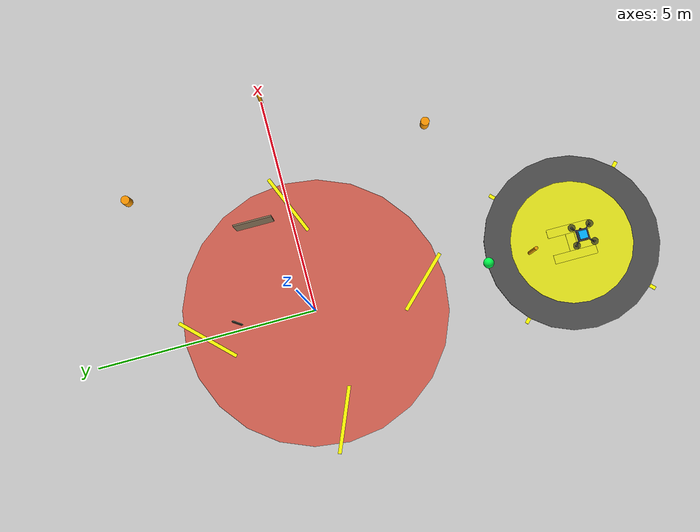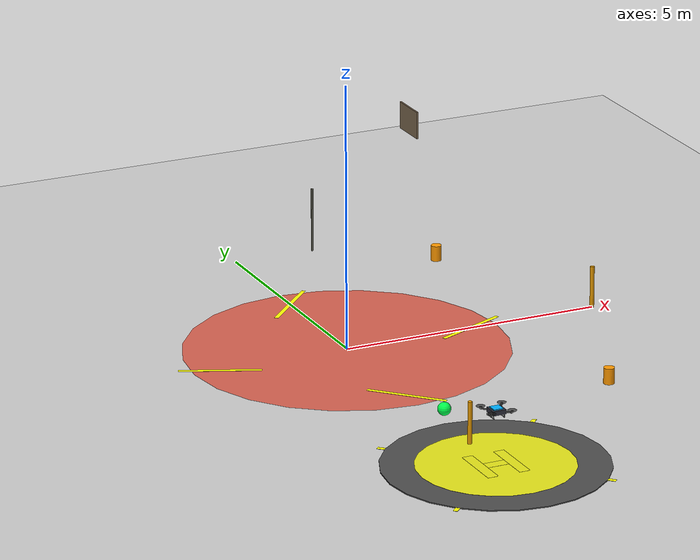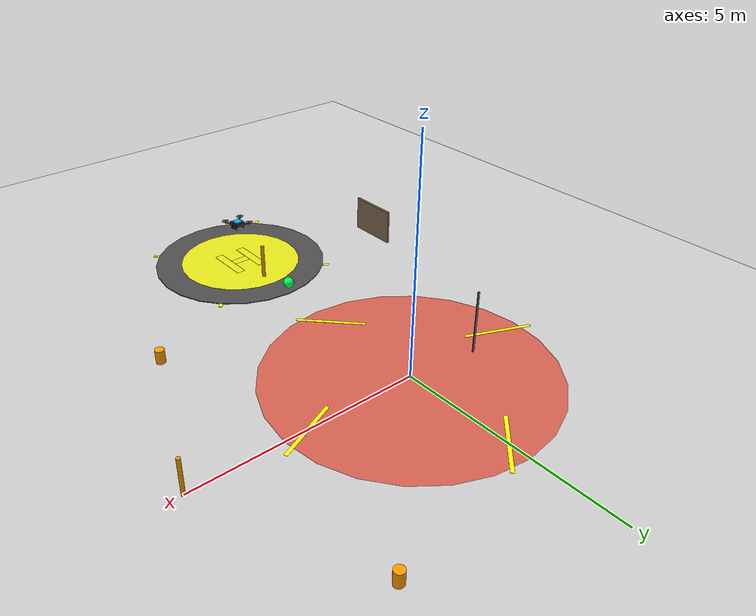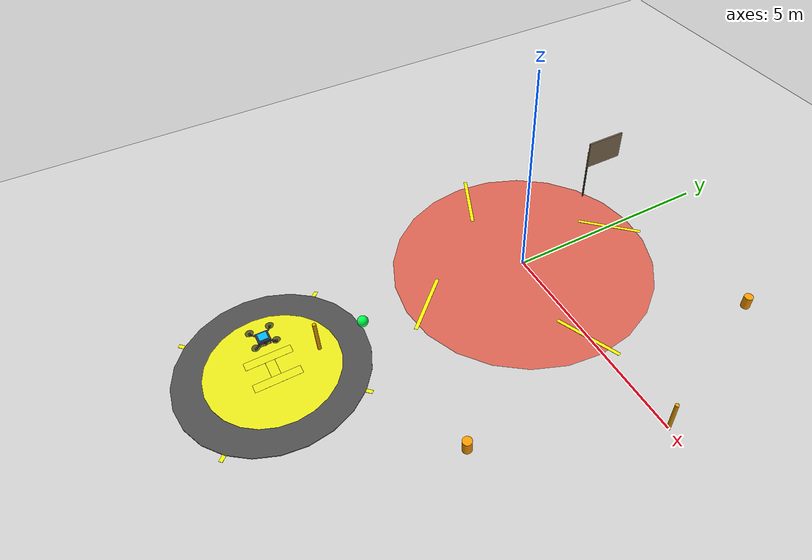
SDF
<sdf version="1.6">
 <world name="inspection_world">
  <include><uri>model://sun</uri></include>
  <include><uri>model://ground_plane</uri></include>
  <model name="barrier_post_1">
   <static>true</static>
   <pose>5 0 0.4 0 0 0</pose>
   <link name="link">
    <visual name="post">
     <geometry><cylinder><radius>0.04</radius><length>0.8</length></cylinder></geometry>
     <material><ambient>0.7 0.5 0.0 1</ambient><diffuse>0.9 0.6 0.0 1</diffuse></material>
    </visual>
   </link>
  </model>
  <model name="barrier_post_4">
   <static>true</static>
   <pose>0 -5 0.4 0 0 0</pose>
   <link name="link">
    <visual name="post">
     <geometry><cylinder><radius>0.04</radius><length>0.8</length></cylinder></geometry>
     <material><ambient>0.7 0.5 0.0 1</ambient><diffuse>0.9 0.6 0.0 1</diffuse></material>
    </visual>
   </link>
  </model>
  <model name="helipad">
   <static>true</static>
   <pose>0 -6 0.011 0 0 0</pose>
   <link name="pad_link">
    <visual name="pad_base">
     <geometry><cylinder><radius>2.0</radius><length>0.02</length></cylinder></geometry>
     <material><ambient>0.25 0.25 0.25 1</ambient><diffuse>0.3 0.3 0.3 1</diffuse></material>
    </visual>
    <visual name="pad_ring">
     <pose>0 0 0.002 0 0 0</pose>
     <geometry><cylinder><radius>1.5</radius><length>0.005</length></cylinder></geometry>
     <material><ambient>0.9 0.9 0.0 1</ambient><diffuse>1.0 1.0 0.0 1</diffuse></material>
    </visual>
    <visual name="h_vert_l">
     <pose>-0.3 0 0.005 0 0 0</pose>
     <geometry><box><size>0.12 1.0 0.005</size></box></geometry>
     <material><ambient>0.9 0.9 0.9 1</ambient><diffuse>1 1 1 1</diffuse></material>
    </visual>
    <visual name="h_vert_r">
     <pose>0.3 0 0.005 0 0 0</pose>
     <geometry><box><size>0.12 1.0 0.005</size></box></geometry>
     <material><ambient>0.9 0.9 0.9 1</ambient><diffuse>1 1 1 1</diffuse></material>
    </visual>
    <visual name="h_horiz">
     <pose>0 0 0.005 0 0 0</pose>
     <geometry><box><size>0.72 0.12 0.005</size></box></geometry>
     <material><ambient>0.9 0.9 0.9 1</ambient><diffuse>1 1 1 1</diffuse></material>
    </visual>
    <visual name="corner_1">
     <pose>1.3 1.3 0.005 0 0 0.785</pose>
     <geometry><box><size>0.6 0.08 0.005</size></box></geometry>
     <material><ambient>0.9 0.9 0.0 1</ambient><diffuse>1 1 0 1</diffuse></material>
    </visual>
    <visual name="corner_2">
     <pose>-1.3 1.3 0.005 0 0 -0.785</pose>
     <geometry><box><size>0.6 0.08 0.005</size></box></geometry>
     <material><ambient>0.9 0.9 0.0 1</ambient><diffuse>1 1 0 1</diffuse></material>
    </visual>
    <visual name="corner_3">
     <pose>1.3 -1.3 0.005 0 0 -0.785</pose>
     <geometry><box><size>0.6 0.08 0.005</size></box></geometry>
     <material><ambient>0.9 0.9 0.0 1</ambient><diffuse>1 1 0 1</diffuse></material>
    </visual>
    <visual name="corner_4">
     <pose>-1.3 -1.3 0.005 0 0 0.785</pose>
     <geometry><box><size>0.6 0.08 0.005</size></box></geometry>
     <material><ambient>0.9 0.9 0.0 1</ambient><diffuse>1 1 0 1</diffuse></material>
    </visual>
   </link>
  </model>
  <model name="danger_zone_tower">
   <static>true</static>
   <pose>0 0 0.006 0 0 0</pose>
   <link name="dz_link">
    <visual name="dz_ring">
     <geometry><cylinder><radius>3.0</radius><length>0.002</length></cylinder></geometry>
     <material><ambient>0.8 0.15 0.1 0.6</ambient><diffuse>0.9 0.2 0.1 0.65</diffuse></material>
    </visual>
    <visual name="stripe1">
     <pose>2.5 0 0.002 0 0 0.4</pose>
     <geometry><box><size>1.5 0.08 0.002</size></box></geometry>
     <material><ambient>0.9 0.9 0.0 1</ambient><diffuse>1 1 0 1</diffuse></material>
    </visual>
    <visual name="stripe2">
     <pose>-2.5 0 0.002 0 0 -0.4</pose>
     <geometry><box><size>1.5 0.08 0.002</size></box></geometry>
     <material><ambient>0.9 0.9 0.0 1</ambient><diffuse>1 1 0 1</diffuse></material>
    </visual>
    <visual name="stripe3">
     <pose>0 2.5 0.002 0 0 0.8</pose>
     <geometry><box><size>1.5 0.08 0.002</size></box></geometry>
     <material><ambient>0.9 0.9 0.0 1</ambient><diffuse>1 1 0 1</diffuse></material>
    </visual>
    <visual name="stripe4">
     <pose>0 -2.5 0.002 0 0 -0.8</pose>
     <geometry><box><size>1.5 0.08 0.002</size></box></geometry>
     <material><ambient>0.9 0.9 0.0 1</ambient><diffuse>1 1 0 1</diffuse></material>
    </visual>
   </link>
  </model>
  <model name="cone_1">
   <static>true</static>
   <pose>3.5 3.5 0.15 0 0 0</pose>
   <link name="l">
    <visual name="v">
     <geometry><cylinder><radius>0.1</radius><length>0.3</length></cylinder></geometry>
     <material><ambient>1.0 0.5 0.0 1</ambient><diffuse>1 0.6 0.0 1</diffuse></material>
    </visual>
   </link>
  </model>
  <model name="cone_3">
   <static>true</static>
   <pose>3.5 -3.5 0.15 0 0 0</pose>
   <link name="l">
    <visual name="v">
     <geometry><cylinder><radius>0.1</radius><length>0.3</length></cylinder></geometry>
     <material><ambient>1.0 0.5 0.0 1</ambient><diffuse>1 0.6 0.0 1</diffuse></material>
    </visual>
   </link>
  </model>
  <model name="checkpoint_tower">
   <static>true</static>
   <pose>0 -4 0.3 0 0 0</pose>
   <link name="l">
    <visual name="v">
     <geometry><sphere><radius>0.12</radius></sphere></geometry>
     <material>
      <ambient>0.0 0.8 0.2 1</ambient>
      <diffuse>0.0 1.0 0.3 1</diffuse>
      <emissive>0.0 0.6 0.15 1</emissive>
     </material>
    </visual>
   </link>
  </model>
  <model name="crack_tower_1">
   <static>true</static>
   <pose>0 1.49 2.0 0 0 0</pose>
   <link name="l">
    <visual name="v">
     <pose>0 0 0 0 0 0.3</pose>
     <geometry><box><size>0.03 0.03 1.2</size></box></geometry>
     <material><ambient>0.15 0.15 0.12 1</ambient><diffuse>0.2 0.2 0.15 1</diffuse></material>
    </visual>
   </link>
  </model>
  <model name="spall_tower">
   <static>true</static>
   <pose>1.48 0.5 4.0 0 0 0</pose>
   <link name="l">
    <visual name="v">
     <geometry><box><size>0.03 0.7 0.5</size></box></geometry>
     <material><ambient>0.4 0.35 0.28 1</ambient><diffuse>0.5 0.42 0.32 1</diffuse></material>
    </visual>
   </link>
  </model>
  <model name="helipad">
   <static>true</static>
   <pose>0 -6 0.01 0 0 0</pose>
   <link name="pad">
    <visual name="v_base">
     <geometry><cylinder><radius>1.5</radius><length>0.02</length></cylinder></geometry>
     <material><ambient>0.2 0.2 0.2 1</ambient><diffuse>0.3 0.3 0.3 1</diffuse></material>
    </visual>
    <visual name="v_ring">
     <pose>0 0 0.011 0 0 0</pose>
     <geometry><cylinder><radius>1.4</radius><length>0.002</length></cylinder></geometry>
     <material><ambient>0.8 0.8 0 1</ambient><diffuse>0.9 0.9 0.1 1</diffuse></material>
    </visual>
    <visual name="v_h1">
     <pose>-0.3 0 0.012 0 0 0</pose>
     <geometry><box><size>0.2 1.0 0.002</size></box></geometry>
     <material><ambient>0.8 0.8 0 1</ambient><diffuse>0.9 0.9 0.1 1</diffuse></material>
    </visual>
    <visual name="v_h2">
     <pose>0.3 0 0.012 0 0 0</pose>
     <geometry><box><size>0.2 1.0 0.002</size></box></geometry>
     <material><ambient>0.8 0.8 0 1</ambient><diffuse>0.9 0.9 0.1 1</diffuse></material>
    </visual>
    <visual name="v_h3">
     <pose>0 0 0.012 0 0 0</pose>
     <geometry><box><size>0.4 0.2 0.002</size></box></geometry>
     <material><ambient>0.8 0.8 0 1</ambient><diffuse>0.9 0.9 0.1 1</diffuse></material>
    </visual>
    <collision name="c">
     <geometry><cylinder><radius>1.5</radius><length>0.02</length></cylinder></geometry>
    </collision>
   </link>
  </model>
  <include><uri>model://simple_drone</uri><pose>0 -6 1 0 0 0</pose></include>
 </world>
</sdf>
